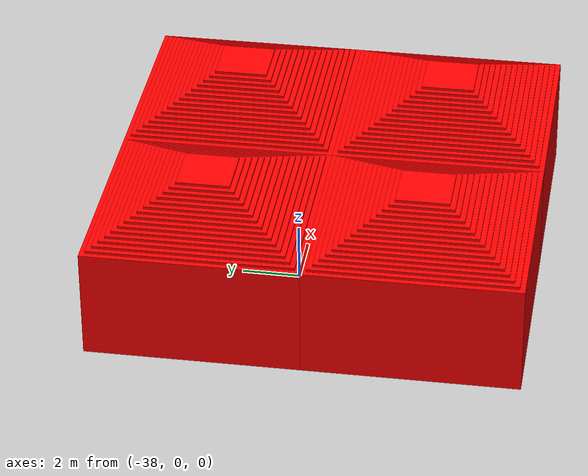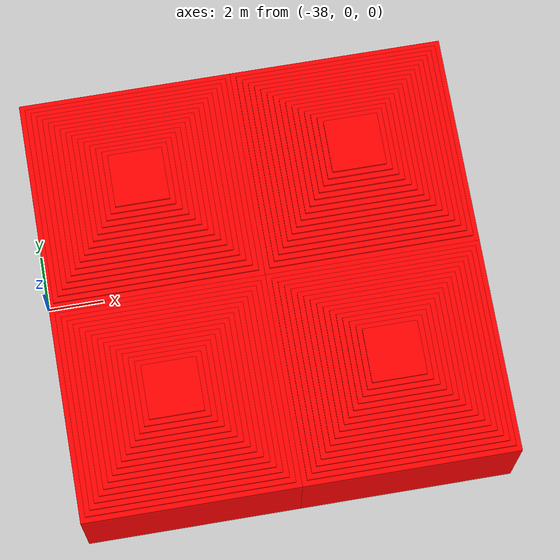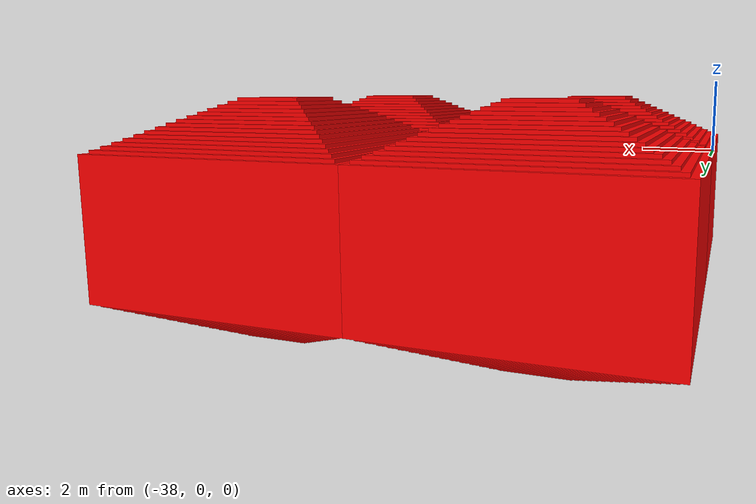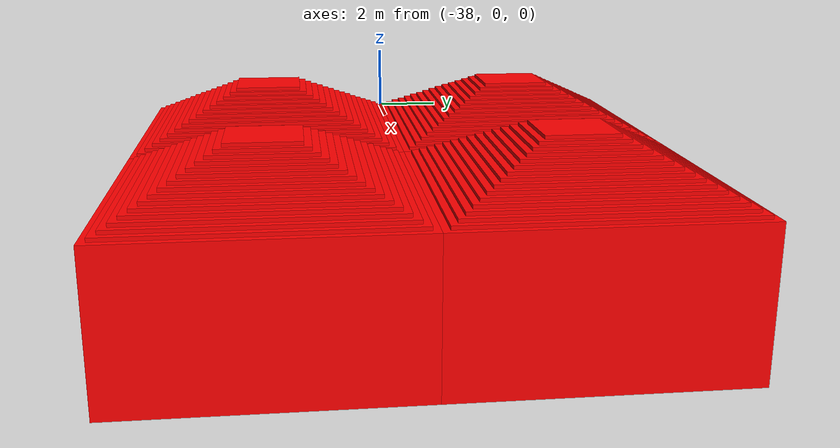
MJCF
<mujoco model="random_box_terrain">
    <compiler angle="degree" coordinate="local"/>
    <option timestep="0.01" gravity="0 0 -9.81" integrator="RK4"/>

    <asset>
        <texture type="2d" name="Plastic006_color"      file="../../textures/Plastic006_2K-PNG/Plastic006_2K-PNG_Color.png"/>
        <texture type="2d" name="Plastic006_roughness"  file="../../textures/Plastic006_2K-PNG/Plastic006_2K-PNG_Roughness.png"/>
        <texture type="2d" name="Plastic006_normal"     file="../../textures/Plastic006_2K-PNG/Plastic006_2K-PNG_NormalDX.png"/>

        <material name="pbr_plastic_black" metallic ="0.05" roughness="1.0" rgba="1 0 0 1.0">
        <layer role="rgb"        texture="Plastic006_color"/>
        <layer role="normal"     texture="Plastic006_normal"/>
        <layer role="roughness"  texture="Plastic006_roughness"/>
        </material>

        <texture type="2d" name="Plastic013A_color"      file="../../textures/Plastic013A_2K-PNG/Plastic013A_2K-PNG_Color.png"/>
        <texture type="2d" name="Plastic013A_roughness"  file="../../textures/Plastic013A_2K-PNG/Plastic013A_2K-PNG_Roughness.png"/>
        <texture type="2d" name="Plastic013A_normal"     file="../../textures/Plastic013A_2K-PNG/Plastic013A_2K-PNG_NormalDX.png"/>

        <material name="pbr_plastic_white" metallic ="0.05" roughness="1.0" rgba="1 0 0 1.0">
        <layer role="rgb"        texture="Plastic013A_color"/>
        <layer role="normal"     texture="Plastic013A_normal"/>
        <layer role="roughness"  texture="Plastic013A_roughness"/>
        </material>

        <texture type="2d" name="Plastic010_color"      file="../../textures/Plastic010_2K-PNG/Plastic010_2K-PNG_Color.png"/>
        <texture type="2d" name="Plastic010_roughness"  file="../../textures/Plastic010_2K-PNG/Plastic010_2K-PNG_Roughness.png"/>
        <texture type="2d" name="Plastic010_normal"     file="../../textures/Plastic010_2K-PNG/Plastic010_2K-PNG_NormalDX.png"/>

        <material name="pbr_plastic_gray" metallic ="0.05" roughness="1.0" rgba="1 0 0 1.0">
        <layer role="rgb"        texture="Plastic010_color"/>
        <layer role="normal"     texture="Plastic010_normal"/>
        <layer role="roughness"  texture="Plastic010_roughness"/>
        </material>
    </asset>
    <worldbody>
        <body name="offset" pos="-30 0 0">
            <body name="terrain" pos="-4 -4 -0.05">

                <geom type="box" pos="0.0 0.0 -2.0" size="4.0 4.0  2.1"   material="pbr_plastic_gray"/>
                <geom type="box" pos="0.0 0.0 -2.0" size="3.8 3.8  2.2"   material="pbr_plastic_white"/>
                <geom type="box" pos="0.0 0.0 -2.0" size="3.6 3.6  2.3"   material="pbr_plastic_gray"/>
                <geom type="box" pos="0.0 0.0 -2.0" size="3.4 3.4  2.4"   material="pbr_plastic_white"/>
                <geom type="box" pos="0.0 0.0 -2.0" size="3.2 3.2  2.5"   material="pbr_plastic_gray"/>
                <geom type="box" pos="0.0 0.0 -2.0" size="3.0 3.0  2.6"   material="pbr_plastic_white"/>
                <geom type="box" pos="0.0 0.0 -2.0" size="2.8 2.8  2.7"   material="pbr_plastic_gray"/>
                <geom type="box" pos="0.0 0.0 -2.0" size="2.6 2.6  2.8"   material="pbr_plastic_white"/>
                <geom type="box" pos="0.0 0.0 -2.0" size="2.4 2.4  2.9"   material="pbr_plastic_gray"/>
                <geom type="box" pos="0.0 0.0 -2.0" size="2.2 2.2  3.0"   material="pbr_plastic_white"/>
                <geom type="box" pos="0.0 0.0 -2.0" size="2.0 2.0  3.1"   material="pbr_plastic_gray"/>
                <geom type="box" pos="0.0 0.0 -2.0" size="1.8 1.8  3.2"   material="pbr_plastic_white"/>
                <geom type="box" pos="0.0 0.0 -2.0" size="1.6 1.6  3.3"   material="pbr_plastic_gray"/>
                <geom type="box" pos="0.0 0.0 -2.0" size="1.4 1.4  3.4"   material="pbr_plastic_white"/>
                <geom type="box" pos="0.0 0.0 -2.0" size="1.2 1.2  3.5"   material="pbr_plastic_gray"/>
                <geom type="box" pos="0.0 0.0 -2.0" size="1.0 1.0  3.6"   material="pbr_plastic_white"/>

                <geom type="box" pos="8.0 0.0 -2.0" size="4.0 4.0  2.1"   material="pbr_plastic_gray"/>
                <geom type="box" pos="8.0 0.0 -2.0" size="3.8 3.8  2.2"   material="pbr_plastic_white"/>
                <geom type="box" pos="8.0 0.0 -2.0" size="3.6 3.6  2.3"   material="pbr_plastic_gray"/>
                <geom type="box" pos="8.0 0.0 -2.0" size="3.4 3.4  2.4"   material="pbr_plastic_white"/>
                <geom type="box" pos="8.0 0.0 -2.0" size="3.2 3.2  2.5"   material="pbr_plastic_gray"/>
                <geom type="box" pos="8.0 0.0 -2.0" size="3.0 3.0  2.6"   material="pbr_plastic_white"/>
                <geom type="box" pos="8.0 0.0 -2.0" size="2.8 2.8  2.7"   material="pbr_plastic_gray"/>
                <geom type="box" pos="8.0 0.0 -2.0" size="2.6 2.6  2.8"   material="pbr_plastic_white"/>
                <geom type="box" pos="8.0 0.0 -2.0" size="2.4 2.4  2.9"   material="pbr_plastic_gray"/>
                <geom type="box" pos="8.0 0.0 -2.0" size="2.2 2.2  3.0"   material="pbr_plastic_white"/>
                <geom type="box" pos="8.0 0.0 -2.0" size="2.0 2.0  3.1"   material="pbr_plastic_gray"/>
                <geom type="box" pos="8.0 0.0 -2.0" size="1.8 1.8  3.2"   material="pbr_plastic_white"/>
                <geom type="box" pos="8.0 0.0 -2.0" size="1.6 1.6  3.3"   material="pbr_plastic_gray"/>
                <geom type="box" pos="8.0 0.0 -2.0" size="1.4 1.4  3.4"   material="pbr_plastic_white"/>
                <geom type="box" pos="8.0 0.0 -2.0" size="1.2 1.2  3.5"   material="pbr_plastic_gray"/>
                <geom type="box" pos="8.0 0.0 -2.0" size="1.0 1.0  3.6"   material="pbr_plastic_white"/>

                <geom type="box" pos="0.0 8.0 -2.0" size="4.0 4.0  2.1"   material="pbr_plastic_gray"/>
                <geom type="box" pos="0.0 8.0 -2.0" size="3.8 3.8  2.2"  material="pbr_plastic_white"/>
                <geom type="box" pos="0.0 8.0 -2.0" size="3.6 3.6  2.3"   material="pbr_plastic_gray"/>
                <geom type="box" pos="0.0 8.0 -2.0" size="3.4 3.4  2.4"  material="pbr_plastic_white"/>
                <geom type="box" pos="0.0 8.0 -2.0" size="3.2 3.2  2.5"   material="pbr_plastic_gray"/>
                <geom type="box" pos="0.0 8.0 -2.0" size="3.0 3.0  2.6"  material="pbr_plastic_white"/>
                <geom type="box" pos="0.0 8.0 -2.0" size="2.8 2.8  2.7"   material="pbr_plastic_gray"/>
                <geom type="box" pos="0.0 8.0 -2.0" size="2.6 2.6  2.8"  material="pbr_plastic_white"/>
                <geom type="box" pos="0.0 8.0 -2.0" size="2.4 2.4  2.9"   material="pbr_plastic_gray"/>
                <geom type="box" pos="0.0 8.0 -2.0" size="2.2 2.2  3.0"  material="pbr_plastic_white"/>
                <geom type="box" pos="0.0 8.0 -2.0" size="2.0 2.0  3.1"   material="pbr_plastic_gray"/>
                <geom type="box" pos="0.0 8.0 -2.0" size="1.8 1.8  3.2"  material="pbr_plastic_white"/>
                <geom type="box" pos="0.0 8.0 -2.0" size="1.6 1.6  3.3"   material="pbr_plastic_gray"/>
                <geom type="box" pos="0.0 8.0 -2.0" size="1.4 1.4  3.4"  material="pbr_plastic_white"/>
                <geom type="box" pos="0.0 8.0 -2.0" size="1.2 1.2  3.5"   material="pbr_plastic_gray"/>
                <geom type="box" pos="0.0 8.0 -2.0" size="1.0 1.0  3.6"  material="pbr_plastic_white"/>

                <geom type="box" pos="8.0 8.0 -2.0" size="4.0 4.0  2.1"   material="pbr_plastic_gray"/>
                <geom type="box" pos="8.0 8.0 -2.0" size="3.8 3.8  2.2"  material="pbr_plastic_white"/>
                <geom type="box" pos="8.0 8.0 -2.0" size="3.6 3.6  2.3"   material="pbr_plastic_gray"/>
                <geom type="box" pos="8.0 8.0 -2.0" size="3.4 3.4  2.4"  material="pbr_plastic_white"/>
                <geom type="box" pos="8.0 8.0 -2.0" size="3.2 3.2  2.5"   material="pbr_plastic_gray"/>
                <geom type="box" pos="8.0 8.0 -2.0" size="3.0 3.0  2.6"  material="pbr_plastic_white"/>
                <geom type="box" pos="8.0 8.0 -2.0" size="2.8 2.8  2.7"   material="pbr_plastic_gray"/>
                <geom type="box" pos="8.0 8.0 -2.0" size="2.6 2.6  2.8"  material="pbr_plastic_white"/>
                <geom type="box" pos="8.0 8.0 -2.0" size="2.4 2.4  2.9"   material="pbr_plastic_gray"/>
                <geom type="box" pos="8.0 8.0 -2.0" size="2.2 2.2  3.0"  material="pbr_plastic_white"/>
                <geom type="box" pos="8.0 8.0 -2.0" size="2.0 2.0  3.1"   material="pbr_plastic_gray"/>
                <geom type="box" pos="8.0 8.0 -2.0" size="1.8 1.8  3.2"  material="pbr_plastic_white"/>
                <geom type="box" pos="8.0 8.0 -2.0" size="1.6 1.6  3.3"   material="pbr_plastic_gray"/>
                <geom type="box" pos="8.0 8.0 -2.0" size="1.4 1.4  3.4"  material="pbr_plastic_white"/>
                <geom type="box" pos="8.0 8.0 -2.0" size="1.2 1.2  3.5"   material="pbr_plastic_gray"/>
                <geom type="box" pos="8.0 8.0 -2.0" size="1.0 1.0  3.6"  material="pbr_plastic_white"/>
            </body>
        </body>
    </worldbody>

    <actuator>
        <!-- 在这里你可以定义一些控制器 -->
    </actuator>

</mujoco>
